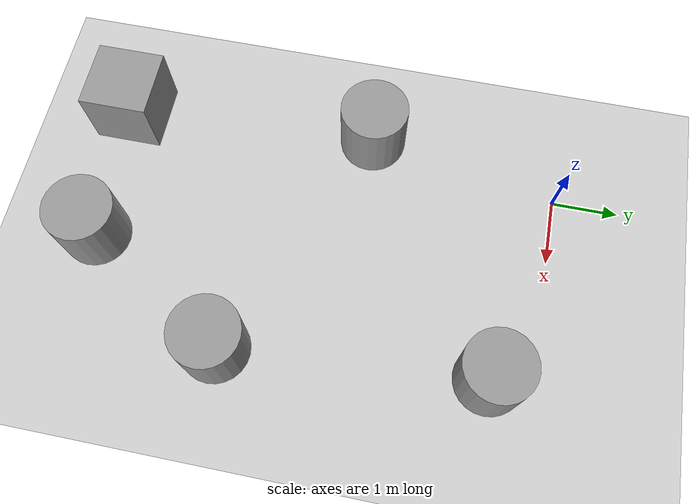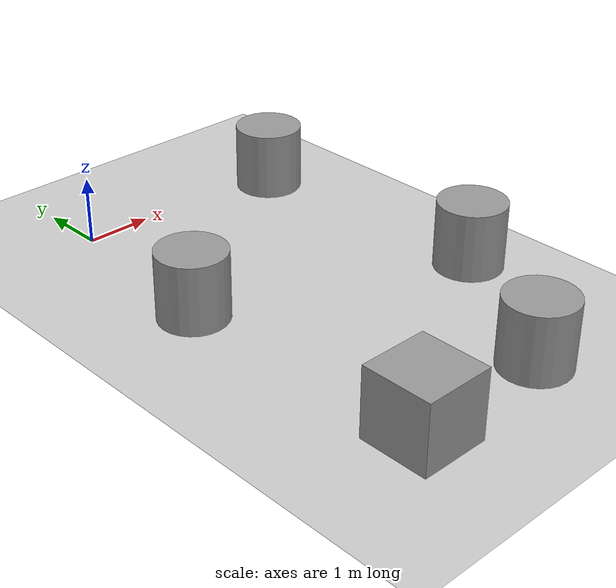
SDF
<sdf version="1.7">
 <world name="default">
  <light name="sun" type="directional">
   <pose>0 0 10 0 -0 0</pose>
   <diffuse>0.8 0.8 0.8 1</diffuse>
   <specular>0.2 0.2 0.2 1</specular>
   <attenuation>
    <range>1000</range>
    <constant>0.9</constant>
    <linear>0.01</linear>
    <quadratic>0.001</quadratic>
   </attenuation>
   <direction>-0.5 0.1 -0.9</direction>
   <spot><inner_angle>0</inner_angle><outer_angle>0</outer_angle><falloff>0</falloff></spot>
  </light>
  <model name="ground_plane">
   <static>1</static>
   <link name="link">
    <collision name="collision">
     <geometry><plane><normal>0 0 1</normal><size>100 100</size></plane></geometry>
     <surface>
      <contact><collide_bitmask>65535</collide_bitmask></contact>
      <friction><ode><mu>100</mu><mu2>50</mu2></ode></friction>
     </surface>
    </collision>
    <visual name="visual">
     <cast_shadows>0</cast_shadows>
     <geometry><plane><normal>0 0 1</normal><size>100 100</size></plane></geometry>
     <material>
      <script><uri>file://media/materials/scripts/gazebo.material</uri><name>Gazebo/Grey</name></script>
     </material>
    </visual>
   </link>
  </model>
  <gravity>0 0 -9.8</gravity>
  <magnetic_field>6e-06 2.3e-05 -4.2e-05</magnetic_field>
  <atmosphere type="adiabatic"/>
  <physics type="ode">
   <max_step_size>0.001</max_step_size>
   <real_time_factor>1</real_time_factor>
   <real_time_update_rate>1000</real_time_update_rate>
  </physics>
  <scene><ambient>0.4 0.4 0.4 1</ambient><background>0.7 0.7 0.7 1</background><shadows>1</shadows></scene>
  <spherical_coordinates>
   <surface_model>EARTH_WGS84</surface_model>
   <latitude_deg>0</latitude_deg>
   <longitude_deg>0</longitude_deg>
   <elevation>0</elevation>
   <heading_deg>0</heading_deg>
  </spherical_coordinates>
  <model name="unit_box">
   <pose>-0.21716 -6.68846 0.6898 -0 -0 -0</pose>
   <link name="link">
    <inertial>
     <mass>1</mass>
     <inertia>
      <ixx>0.166667</ixx>
      <ixy>0</ixy>
      <ixz>0</ixz>
      <iyy>0.166667</iyy>
      <iyz>0</iyz>
      <izz>0.166667</izz>
     </inertia>
    </inertial>
    <collision name="collision"><geometry><box><size>1 1 1</size></box></geometry></collision>
    <visual name="visual">
     <geometry><box><size>1 1 1</size></box></geometry>
     <material>
      <script><name>Gazebo/Grey</name><uri>file://media/materials/scripts/gazebo.material</uri></script>
     </material>
    </visual>
   </link>
  </model>
  <model name="unit_cylinder">
   <pose>1.90196 -6.65218 0.68979 -0 -0 -3e-05</pose>
   <link name="link">
    <inertial>
     <mass>1</mass>
     <inertia><ixx>0.145833</ixx><ixy>0</ixy><ixz>0</ixz><iyy>0.145833</iyy><iyz>0</iyz><izz>0.125</izz></inertia>
    </inertial>
    <collision name="collision">
     <geometry><cylinder><radius>0.5</radius><length>1</length></cylinder></geometry>
    </collision>
    <visual name="visual">
     <geometry><cylinder><radius>0.5</radius><length>1</length></cylinder></geometry>
     <material>
      <script><name>Gazebo/Grey</name><uri>file://media/materials/scripts/gazebo.material</uri></script>
     </material>
    </visual>
   </link>
  </model>
  <model name="unit_cylinder_0">
   <pose>3.24546 -4.477 0.68979 0 -0 2.2e-05</pose>
   <link name="link">
    <inertial>
     <mass>1</mass>
     <inertia><ixx>0.145833</ixx><ixy>0</ixy><ixz>0</ixz><iyy>0.145833</iyy><iyz>0</iyz><izz>0.125</izz></inertia>
    </inertial>
    <collision name="collision">
     <geometry><cylinder><radius>0.5</radius><length>1</length></cylinder></geometry>
    </collision>
    <visual name="visual">
     <geometry><cylinder><radius>0.5</radius><length>1</length></cylinder></geometry>
     <material>
      <script><name>Gazebo/Grey</name><uri>file://media/materials/scripts/gazebo.material</uri></script>
     </material>
    </visual>
   </link>
  </model>
  <model name="unit_cylinder_1">
   <pose>2.9481 -0.663309 0.689797 6e-06 1e-06 1e-05</pose>
   <link name="link">
    <inertial>
     <mass>1</mass>
     <inertia><ixx>0.145833</ixx><ixy>0</ixy><ixz>0</ixz><iyy>0.145833</iyy><iyz>0</iyz><izz>0.125</izz></inertia>
    </inertial>
    <collision name="collision">
     <geometry><cylinder><radius>0.5</radius><length>1</length></cylinder></geometry>
    </collision>
    <visual name="visual">
     <geometry><cylinder><radius>0.5</radius><length>1</length></cylinder></geometry>
     <material>
      <script><name>Gazebo/Grey</name><uri>file://media/materials/scripts/gazebo.material</uri></script>
     </material>
    </visual>
   </link>
  </model>
  <model name="unit_cylinder_2">
   <pose>-0.428148 -2.90506 0.689802 2e-06 -3e-06 -1e-05</pose>
   <link name="link">
    <inertial>
     <mass>1</mass>
     <inertia><ixx>0.145833</ixx><ixy>0</ixy><ixz>0</ixz><iyy>0.145833</iyy><iyz>0</iyz><izz>0.125</izz></inertia>
    </inertial>
    <collision name="collision">
     <geometry><cylinder><radius>0.5</radius><length>1</length></cylinder></geometry>
    </collision>
    <visual name="visual">
     <geometry><cylinder><radius>0.5</radius><length>1</length></cylinder></geometry>
     <material>
      <script><name>Gazebo/Grey</name><uri>file://media/materials/scripts/gazebo.material</uri></script>
     </material>
    </visual>
   </link>
  </model>
 </world>
</sdf>
